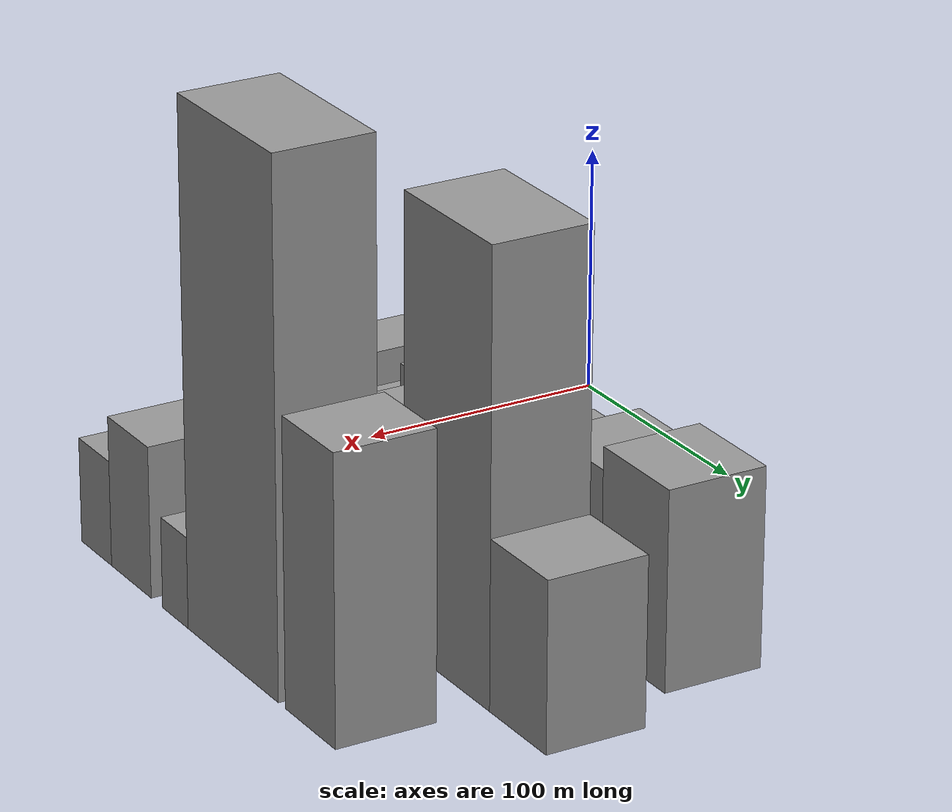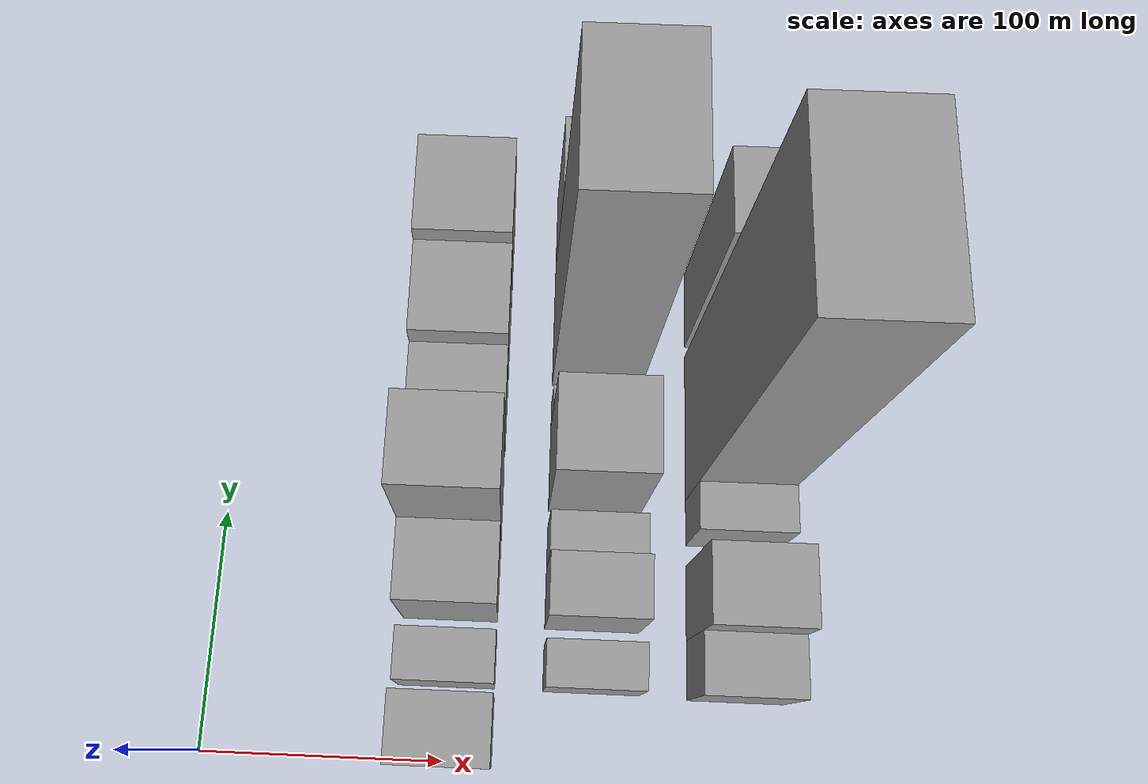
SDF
<sdf version="1.6">
 <world name="default">
  <model name="building_33">
   <static>1</static>
   <pose>100.0000 12.1515 0 0.000000 0.000000 0.000000</pose>
   <link name="link">
    <pose>0 0 24.00 0 0 0</pose>
    <collision name="collision"><geometry><box><size>40.0000 27.3430 48.0000</size></box></geometry></collision>
    <visual name="visual">
     <cast_shadows>0</cast_shadows>
     <geometry><box><size>40.0000 27.3430 48.0000</size></box></geometry>
     <material>
      <script>
       <uri>model://grey_wall/materials/scripts</uri>
       <uri>model://grey_wall/materials/textures</uri>
       <name>vrc/grey_wall</name>
      </script>
     </material>
    </visual>
   </link>
  </model>
  <model name="building_34">
   <static>1</static>
   <pose>100.0000 40.2067 0 0.000000 0.000000 0.000000</pose>
   <link name="link">
    <pose>0 0 18.00 0 0 0</pose>
    <collision name="collision"><geometry><box><size>40.0000 20.7675 36.0000</size></box></geometry></collision>
    <visual name="visual">
     <cast_shadows>0</cast_shadows>
     <geometry><box><size>40.0000 20.7675 36.0000</size></box></geometry>
     <material>
      <script>
       <uri>model://grey_wall/materials/scripts</uri>
       <uri>model://grey_wall/materials/textures</uri>
       <name>vrc/grey_wall</name>
      </script>
     </material>
    </visual>
   </link>
  </model>
  <model name="building_35">
   <static>1</static>
   <pose>100.0000 73.3706 0 0.000000 0.000000 0.000000</pose>
   <link name="link">
    <pose>0 0 28.50 0 0 0</pose>
    <collision name="collision"><geometry><box><size>40.0000 31.5603 57.0000</size></box></geometry></collision>
    <visual name="visual">
     <cast_shadows>0</cast_shadows>
     <geometry><box><size>40.0000 31.5603 57.0000</size></box></geometry>
     <material>
      <script>
       <uri>model://grey_wall/materials/scripts</uri>
       <uri>model://grey_wall/materials/textures</uri>
       <name>vrc/grey_wall</name>
      </script>
     </material>
    </visual>
   </link>
  </model>
  <model name="building_36">
   <static>1</static>
   <pose>100.0000 106.2150 0 0.000000 0.000000 0.000000</pose>
   <link name="link">
    <pose>0 0 54.00 0 0 0</pose>
    <collision name="collision"><geometry><box><size>40.0000 34.1284 108.0000</size></box></geometry></collision>
    <visual name="visual">
     <cast_shadows>0</cast_shadows>
     <geometry><box><size>40.0000 34.1284 108.0000</size></box></geometry>
     <material>
      <script>
       <uri>model://grey_wall/materials/scripts</uri>
       <uri>model://grey_wall/materials/textures</uri>
       <name>vrc/grey_wall</name>
      </script>
     </material>
    </visual>
   </link>
  </model>
  <model name="building_37">
   <static>1</static>
   <pose>100.0000 145.7247 0 0.000000 0.000000 0.000000</pose>
   <link name="link">
    <pose>0 0 28.50 0 0 0</pose>
    <collision name="collision"><geometry><box><size>40.0000 30.8910 57.0000</size></box></geometry></collision>
    <visual name="visual">
     <cast_shadows>0</cast_shadows>
     <geometry><box><size>40.0000 30.8910 57.0000</size></box></geometry>
     <material>
      <script>
       <uri>model://grey_wall/materials/scripts</uri>
       <uri>model://grey_wall/materials/textures</uri>
       <name>vrc/grey_wall</name>
      </script>
     </material>
    </visual>
   </link>
  </model>
  <model name="building_38">
   <static>1</static>
   <pose>100.0000 180.6867 0 0.000000 0.000000 0.000000</pose>
   <link name="link">
    <pose>0 0 34.50 0 0 0</pose>
    <collision name="collision"><geometry><box><size>40.0000 39.0329 69.0000</size></box></geometry></collision>
    <visual name="visual">
     <cast_shadows>0</cast_shadows>
     <geometry><box><size>40.0000 39.0329 69.0000</size></box></geometry>
     <material>
      <script>
       <uri>model://grey_wall/materials/scripts</uri>
       <uri>model://grey_wall/materials/textures</uri>
       <name>vrc/grey_wall</name>
      </script>
     </material>
    </visual>
   </link>
  </model>
  <model name="building_39">
   <static>1</static>
   <pose>100.0000 221.3806 0 0.000000 0.000000 0.000000</pose>
   <link name="link">
    <pose>0 0 39.00 0 0 0</pose>
    <collision name="collision"><geometry><box><size>40.0000 42.3551 78.0000</size></box></geometry></collision>
    <visual name="visual">
     <cast_shadows>0</cast_shadows>
     <geometry><box><size>40.0000 42.3551 78.0000</size></box></geometry>
     <material>
      <script>
       <uri>model://grey_wall/materials/scripts</uri>
       <uri>model://grey_wall/materials/textures</uri>
       <name>vrc/grey_wall</name>
      </script>
     </material>
    </visual>
   </link>
  </model>
  <model name="building_90">
   <static>1</static>
   <pose>160.0000 39.0484 0 0.000000 0.000000 0.000000</pose>
   <link name="link">
    <pose>0 0 16.50 0 0 0</pose>
    <collision name="collision"><geometry><box><size>40.0000 18.8454 33.0000</size></box></geometry></collision>
    <visual name="visual">
     <cast_shadows>0</cast_shadows>
     <geometry><box><size>40.0000 18.8454 33.0000</size></box></geometry>
     <material>
      <script>
       <uri>model://grey_wall/materials/scripts</uri>
       <uri>model://grey_wall/materials/textures</uri>
       <name>vrc/grey_wall</name>
      </script>
     </material>
    </visual>
   </link>
  </model>
  <model name="building_91">
   <static>1</static>
   <pose>160.0000 68.0757 0 0.000000 0.000000 0.000000</pose>
   <link name="link">
    <pose>0 0 24.00 0 0 0</pose>
    <collision name="collision"><geometry><box><size>40.0000 25.2090 48.0000</size></box></geometry></collision>
    <visual name="visual">
     <cast_shadows>0</cast_shadows>
     <geometry><box><size>40.0000 25.2090 48.0000</size></box></geometry>
     <material>
      <script>
       <uri>model://grey_wall/materials/scripts</uri>
       <uri>model://grey_wall/materials/textures</uri>
       <name>vrc/grey_wall</name>
      </script>
     </material>
    </visual>
   </link>
  </model>
  <model name="building_92">
   <static>1</static>
   <pose>160.0000 90.0440 0 0.000000 0.000000 0.000000</pose>
   <link name="link">
    <pose>0 0 18.00 0 0 0</pose>
    <collision name="collision"><geometry><box><size>40.0000 18.7275 36.0000</size></box></geometry></collision>
    <visual name="visual">
     <cast_shadows>0</cast_shadows>
     <geometry><box><size>40.0000 18.7275 36.0000</size></box></geometry>
     <material>
      <script>
       <uri>model://grey_wall/materials/scripts</uri>
       <uri>model://grey_wall/materials/textures</uri>
       <name>vrc/grey_wall</name>
      </script>
     </material>
    </visual>
   </link>
  </model>
  <model name="building_93">
   <static>1</static>
   <pose>160.0000 125.8068 0 0.000000 0.000000 0.000000</pose>
   <link name="link">
    <pose>0 0 36.00 0 0 0</pose>
    <collision name="collision"><geometry><box><size>40.0000 38.7981 72.0000</size></box></geometry></collision>
    <visual name="visual">
     <cast_shadows>0</cast_shadows>
     <geometry><box><size>40.0000 38.7981 72.0000</size></box></geometry>
     <material>
      <script>
       <uri>model://grey_wall/materials/scripts</uri>
       <uri>model://grey_wall/materials/textures</uri>
       <name>vrc/grey_wall</name>
      </script>
     </material>
    </visual>
   </link>
  </model>
  <model name="building_94">
   <static>1</static>
   <pose>160.0000 151.0889 0 0.000000 0.000000 0.000000</pose>
   <link name="link">
    <pose>0 0 12.00 0 0 0</pose>
    <collision name="collision"><geometry><box><size>40.0000 11.7660 24.0000</size></box></geometry></collision>
    <visual name="visual">
     <cast_shadows>0</cast_shadows>
     <geometry><box><size>40.0000 11.7660 24.0000</size></box></geometry>
     <material>
      <script>
       <uri>model://grey_wall/materials/scripts</uri>
       <uri>model://grey_wall/materials/textures</uri>
       <name>vrc/grey_wall</name>
      </script>
     </material>
    </visual>
   </link>
  </model>
  <model name="building_95">
   <static>1</static>
   <pose>160.0000 194.3535 0 0.000000 0.000000 0.000000</pose>
   <link name="link">
    <pose>0 0 87.00 0 0 0</pose>
    <collision name="collision"><geometry><box><size>40.0000 58.7632 174.0000</size></box></geometry></collision>
    <visual name="visual">
     <cast_shadows>0</cast_shadows>
     <geometry><box><size>40.0000 58.7632 174.0000</size></box></geometry>
     <material>
      <script>
       <uri>model://grey_wall/materials/scripts</uri>
       <uri>model://grey_wall/materials/textures</uri>
       <name>vrc/grey_wall</name>
      </script>
     </material>
    </visual>
   </link>
  </model>
  <model name="building_96">
   <static>1</static>
   <pose>160.0000 242.5137 0 0.000000 0.000000 0.000000</pose>
   <link name="link">
    <pose>0 0 33.00 0 0 0</pose>
    <collision name="collision"><geometry><box><size>40.0000 37.5573 66.0000</size></box></geometry></collision>
    <visual name="visual">
     <cast_shadows>0</cast_shadows>
     <geometry><box><size>40.0000 37.5573 66.0000</size></box></geometry>
     <material>
      <script>
       <uri>model://grey_wall/materials/scripts</uri>
       <uri>model://grey_wall/materials/textures</uri>
       <name>vrc/grey_wall</name>
      </script>
     </material>
    </visual>
   </link>
  </model>
  <model name="building_144">
   <static>1</static>
   <pose>220.0000 40.8309 0 0.000000 0.000000 0.000000</pose>
   <link name="link">
    <pose>0 0 21.00 0 0 0</pose>
    <collision name="collision"><geometry><box><size>40.0000 24.5007 42.0000</size></box></geometry></collision>
    <visual name="visual">
     <cast_shadows>0</cast_shadows>
     <geometry><box><size>40.0000 24.5007 42.0000</size></box></geometry>
     <material>
      <script>
       <uri>model://grey_wall/materials/scripts</uri>
       <uri>model://grey_wall/materials/textures</uri>
       <name>vrc/grey_wall</name>
      </script>
     </material>
    </visual>
   </link>
  </model>
  <model name="building_145">
   <static>1</static>
   <pose>220.0000 68.9555 0 0.000000 0.000000 0.000000</pose>
   <link name="link">
    <pose>0 0 30.00 0 0 0</pose>
    <collision name="collision"><geometry><box><size>40.0000 31.7485 60.0000</size></box></geometry></collision>
    <visual name="visual">
     <cast_shadows>0</cast_shadows>
     <geometry><box><size>40.0000 31.7485 60.0000</size></box></geometry>
     <material>
      <script>
       <uri>model://grey_wall/materials/scripts</uri>
       <uri>model://grey_wall/materials/textures</uri>
       <name>vrc/grey_wall</name>
      </script>
     </material>
    </visual>
   </link>
  </model>
  <model name="building_146">
   <static>1</static>
   <pose>220.0000 103.7662 0 0.000000 0.000000 0.000000</pose>
   <link name="link">
    <pose>0 0 18.00 0 0 0</pose>
    <collision name="collision"><geometry><box><size>40.0000 19.8728 36.0000</size></box></geometry></collision>
    <visual name="visual">
     <cast_shadows>0</cast_shadows>
     <geometry><box><size>40.0000 19.8728 36.0000</size></box></geometry>
     <material>
      <script>
       <uri>model://grey_wall/materials/scripts</uri>
       <uri>model://grey_wall/materials/textures</uri>
       <name>vrc/grey_wall</name>
      </script>
     </material>
    </visual>
   </link>
  </model>
  <model name="building_147">
   <static>1</static>
   <pose>220.0000 147.4147 0 0.000000 0.000000 0.000000</pose>
   <link name="link">
    <pose>0 0 102.00 0 0 0</pose>
    <collision name="collision"><geometry><box><size>40.0000 67.4244 204.0000</size></box></geometry></collision>
    <visual name="visual">
     <cast_shadows>0</cast_shadows>
     <geometry><box><size>40.0000 67.4244 204.0000</size></box></geometry>
     <material>
      <script>
       <uri>model://grey_wall/materials/scripts</uri>
       <uri>model://grey_wall/materials/textures</uri>
       <name>vrc/grey_wall</name>
      </script>
     </material>
    </visual>
   </link>
  </model>
  <model name="building_148">
   <static>1</static>
   <pose>220.0000 203.9189 0 0.000000 0.000000 0.000000</pose>
   <link name="link">
    <pose>0 0 55.50 0 0 0</pose>
    <collision name="collision"><geometry><box><size>40.0000 35.5840 111.0000</size></box></geometry></collision>
    <visual name="visual">
     <cast_shadows>0</cast_shadows>
     <geometry><box><size>40.0000 35.5840 111.0000</size></box></geometry>
     <material>
      <script>
       <uri>model://grey_wall/materials/scripts</uri>
       <uri>model://grey_wall/materials/textures</uri>
       <name>vrc/grey_wall</name>
      </script>
     </material>
    </visual>
   </link>
  </model>
 </world>
</sdf>
